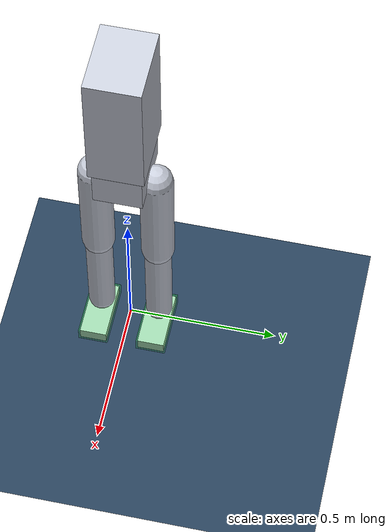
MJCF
<mujoco model="BR1 scene">
  <!-- Simulation scene = BR-1 robot + ground plane + lighting.
       Load THIS file for simulation/training/visualisation.
       (robot.xml on its own is also loadable, just with no floor.) -->

  <include file="robot.xml"/>

  <statistic center="0 0 0.6" extent="1.8"/>

  <visual>
    <headlight diffuse="0.6 0.6 0.6" ambient="0.35 0.35 0.35" specular="0 0 0"/>
    <rgba haze="0.15 0.25 0.35 1"/>
    <global azimuth="140" elevation="-20"/>
  </visual>

  <asset>
    <texture type="skybox" builtin="gradient" rgb1="0.30 0.50 0.70" rgb2="0 0 0"
             width="512" height="3072"/>
    <texture type="2d" name="groundplane" builtin="checker" mark="edge"
             rgb1="0.20 0.30 0.40" rgb2="0.10 0.20 0.30" markrgb="0.8 0.8 0.8"
             width="300" height="300"/>
    <material name="groundplane" texture="groundplane" texuniform="true"
              texrepeat="5 5" reflectance="0.15"/>
  </asset>

  <worldbody>
    <light pos="0 0 3.5" dir="0 0 -1" directional="true"/>
    <!-- Flat, infinite ground. friction = INITIAL ASSUMPTION (rubber sole on
         lab floor). Domain randomisation will sweep 0.5 - 1.2 from Milestone 7. -->
    <geom name="floor" type="plane" size="0 0 0.05" material="groundplane"
          condim="3" friction="1.0 0.005 0.0001"/>
  </worldbody>
</mujoco>

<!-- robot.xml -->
<mujoco model="BR1">
  <!--  BR-1  |  Biped Robot, Generation 1                               -->
  <!--  12 actuated DOF (6 per leg) + 6-DOF floating base                -->
  <!--  Units: SI. Internally MuJoCo uses radians; joint ranges here     -->
  <!--  are in DEGREES for readability (compiler angle="degree").        -->
  <!--  CONFIDENCE TAGS (see config/robot.yaml for the full list):       -->
  <!--    DERIVED            = computed from a stated model/ratio         -->
  <!--    INITIAL ASSUMPTION = placeholder, replace with CAD/bench data   -->
  <!--    CONVENTION         = a modelling choice, not a physical fact    -->

  <compiler angle="degree" autolimits="true"/>

  <!-- timestep 2 ms = 500 Hz physics. Policy will run at 50 Hz (decimation 10).
       implicitfast integrator: stable with joint damping + contacts.        -->
  <option timestep="0.002" integrator="implicitfast"/>

  <default>
    <default class="br1">
      <joint damping="1.0" armature="0.01" frictionloss="0.2"/>
      <geom condim="3" friction="1.0 0.005 0.0001"/>

      <default class="viz">
        <geom type="capsule" contype="0" conaffinity="0" group="2"
              rgba="0.78 0.80 0.85 1"/>
      </default>

      <!-- collision geometry: collides with the FLOOR only (conaffinity=0
           disables all robot self-collision for Milestones 1-6).              -->
      <default class="col">
        <geom group="3" rgba="0.90 0.50 0.20 0.35" contype="1" conaffinity="0"/>
      </default>
    </default>
  </default>

  <worldbody>
    <!-- ===================== FLOATING BASE ===================== -->
    <body name="pelvis" pos="0 0 0.86" childclass="br1">
      <freejoint name="root"/>
      <!-- pelvis box 0.22 x 0.16 x 0.12 m, uniform density -> diag inertia. INITIAL ASSUMPTION -->
      <inertial pos="0 0 0" mass="4.0" diaginertia="0.013 0.021 0.025"/>
      <geom class="viz" type="box" size="0.11 0.08 0.06"/>
      <!-- IMU strapdown location (base frame). gyro + accel + orientation. -->
      <site name="imu" pos="0 0 0" size="0.012" rgba="1 0 0 1"/>

      <!-- rigid upper body (no waist joint in Gen-1): trunk + head + arm mass -->
      <body name="torso" pos="0 0 0.30">
        <inertial pos="0 0 0" mass="14.6" diaginertia="0.286 0.316 0.110"/>
        <geom class="viz" type="box" size="0.12 0.09 0.225"/>
      </body>

      <!-- ========================= LEFT LEG ========================= -->
      <body name="L_hip_yaw_link" pos="0 0.10 -0.06">
        <joint name="L_hip_yaw" axis="0 0 1" range="-45 45"/>
        <inertial pos="0 0 0" mass="0.35" diaginertia="0.0004 0.0004 0.0004"/>
        <geom class="viz" type="sphere" size="0.045"/>

        <body name="L_hip_roll_link" pos="0 0 0">
          <joint name="L_hip_roll" axis="1 0 0" range="-25 35"/>
          <inertial pos="0 0 0" mass="0.35" diaginertia="0.0004 0.0004 0.0004"/>
          <geom class="viz" type="sphere" size="0.045"/>

          <body name="L_thigh" pos="0 0 0">
            <joint name="L_hip_pitch" axis="0 1 0" range="-135 30"/>
            <inertial pos="0 0 -0.19" mass="3.3" diaginertia="0.042 0.042 0.005"/>
            <geom class="viz" fromto="0 0 0 0 0 -0.38" size="0.055"/>
            <geom class="col" type="capsule" fromto="0 0 -0.06 0 0 -0.32" size="0.05"/>

            <body name="L_shank" pos="0 0 -0.38">
              <joint name="L_knee" axis="0 1 0" range="0 150"/>
              <inertial pos="0 0 -0.18" mass="1.8" diaginertia="0.020 0.020 0.0018"/>
              <geom class="viz" fromto="0 0 0 0 0 -0.36" size="0.045"/>
              <geom class="col" type="capsule" fromto="0 0 -0.05 0 0 -0.31" size="0.04"/>

              <body name="L_ankle_link" pos="0 0 -0.36">
                <joint name="L_ankle_pitch" axis="0 1 0" range="-45 30"/>
                <inertial pos="0 0 0" mass="0.30" diaginertia="0.0004 0.0004 0.0004"/>
                <geom class="viz" type="sphere" size="0.035"/>

                <body name="L_foot" pos="0 0 0">
                  <joint name="L_ankle_roll" axis="1 0 0" range="-20 20"/>
                  <!-- foot box 0.20(L) x 0.09(W) x 0.04(H); CoM 4 cm fwd, 4 cm below ankle -->
                  <inertial pos="0.04 0 -0.04" mass="0.60" diaginertia="0.00049 0.0021 0.0024"/>
                  <geom class="viz" type="box" pos="0.04 0 -0.04" size="0.10 0.045 0.02"/>
                  <geom name="L_sole" class="col" type="box" pos="0.04 0 -0.04"
                        size="0.10 0.045 0.02" friction="1.0 0.02 0.001" condim="3"/>
                  <!-- touch sensor volume (encloses the sole) -->
                  <site name="L_foot_site" type="box" pos="0.04 0 -0.04"
                        size="0.105 0.05 0.025" rgba="0 1 0 0.12"/>
                </body>
              </body>
            </body>
          </body>
        </body>
      </body>

      <!-- ========================= RIGHT LEG ========================= -->
      <body name="R_hip_yaw_link" pos="0 -0.10 -0.06">
        <joint name="R_hip_yaw" axis="0 0 1" range="-45 45"/>
        <inertial pos="0 0 0" mass="0.35" diaginertia="0.0004 0.0004 0.0004"/>
        <geom class="viz" type="sphere" size="0.045"/>

        <body name="R_hip_roll_link" pos="0 0 0">
          <joint name="R_hip_roll" axis="1 0 0" range="-25 35"/>
          <inertial pos="0 0 0" mass="0.35" diaginertia="0.0004 0.0004 0.0004"/>
          <geom class="viz" type="sphere" size="0.045"/>

          <body name="R_thigh" pos="0 0 0">
            <joint name="R_hip_pitch" axis="0 1 0" range="-135 30"/>
            <inertial pos="0 0 -0.19" mass="3.3" diaginertia="0.042 0.042 0.005"/>
            <geom class="viz" fromto="0 0 0 0 0 -0.38" size="0.055"/>
            <geom class="col" type="capsule" fromto="0 0 -0.06 0 0 -0.32" size="0.05"/>

            <body name="R_shank" pos="0 0 -0.38">
              <joint name="R_knee" axis="0 1 0" range="0 150"/>
              <inertial pos="0 0 -0.18" mass="1.8" diaginertia="0.020 0.020 0.0018"/>
              <geom class="viz" fromto="0 0 0 0 0 -0.36" size="0.045"/>
              <geom class="col" type="capsule" fromto="0 0 -0.05 0 0 -0.31" size="0.04"/>

              <body name="R_ankle_link" pos="0 0 -0.36">
                <joint name="R_ankle_pitch" axis="0 1 0" range="-45 30"/>
                <inertial pos="0 0 0" mass="0.30" diaginertia="0.0004 0.0004 0.0004"/>
                <geom class="viz" type="sphere" size="0.035"/>

                <body name="R_foot" pos="0 0 0">
                  <joint name="R_ankle_roll" axis="1 0 0" range="-20 20"/>
                  <inertial pos="0.04 0 -0.04" mass="0.60" diaginertia="0.00049 0.0021 0.0024"/>
                  <geom class="viz" type="box" pos="0.04 0 -0.04" size="0.10 0.045 0.02"/>
                  <geom name="R_sole" class="col" type="box" pos="0.04 0 -0.04"
                        size="0.10 0.045 0.02" friction="1.0 0.02 0.001" condim="3"/>
                  <site name="R_foot_site" type="box" pos="0.04 0 -0.04"
                        size="0.105 0.05 0.025" rgba="0 1 0 0.12"/>
                </body>
              </body>
            </body>
          </body>
        </body>
      </body>
    </body>
  </worldbody>

  <!-- ===================== ACTUATORS ===================== -->
  <actuator>
    <motor name="L_hip_yaw"     joint="L_hip_yaw"     ctrlrange="-40 40"   forcerange="-40 40"/>
    <motor name="L_hip_roll"    joint="L_hip_roll"    ctrlrange="-100 100" forcerange="-100 100"/>
    <motor name="L_hip_pitch"   joint="L_hip_pitch"   ctrlrange="-120 120" forcerange="-120 120"/>
    <motor name="L_knee"        joint="L_knee"        ctrlrange="-120 120" forcerange="-120 120"/>
    <motor name="L_ankle_pitch" joint="L_ankle_pitch" ctrlrange="-80 80"   forcerange="-80 80"/>
    <motor name="L_ankle_roll"  joint="L_ankle_roll"  ctrlrange="-40 40"   forcerange="-40 40"/>
    <motor name="R_hip_yaw"     joint="R_hip_yaw"     ctrlrange="-40 40"   forcerange="-40 40"/>
    <motor name="R_hip_roll"    joint="R_hip_roll"    ctrlrange="-100 100" forcerange="-100 100"/>
    <motor name="R_hip_pitch"   joint="R_hip_pitch"   ctrlrange="-120 120" forcerange="-120 120"/>
    <motor name="R_knee"        joint="R_knee"        ctrlrange="-120 120" forcerange="-120 120"/>
    <motor name="R_ankle_pitch" joint="R_ankle_pitch" ctrlrange="-80 80"   forcerange="-80 80"/>
    <motor name="R_ankle_roll"  joint="R_ankle_roll"  ctrlrange="-40 40"   forcerange="-40 40"/>
  </actuator>

  <!-- ===================== SENSORS ===================== -->
  <!-- Everything the SIM can measure. Which of these the RL *actor* is allowed
       to see is decided in env/observations.py (must be onboard-measurable). -->
  <sensor>
    <!-- joint encoders -->
    <jointpos name="L_hip_yaw_pos"     joint="L_hip_yaw"/>
    <jointpos name="L_hip_roll_pos"    joint="L_hip_roll"/>
    <jointpos name="L_hip_pitch_pos"   joint="L_hip_pitch"/>
    <jointpos name="L_knee_pos"        joint="L_knee"/>
    <jointpos name="L_ankle_pitch_pos" joint="L_ankle_pitch"/>
    <jointpos name="L_ankle_roll_pos"  joint="L_ankle_roll"/>
    <jointpos name="R_hip_yaw_pos"     joint="R_hip_yaw"/>
    <jointpos name="R_hip_roll_pos"    joint="R_hip_roll"/>
    <jointpos name="R_hip_pitch_pos"   joint="R_hip_pitch"/>
    <jointpos name="R_knee_pos"        joint="R_knee"/>
    <jointpos name="R_ankle_pitch_pos" joint="R_ankle_pitch"/>
    <jointpos name="R_ankle_roll_pos"  joint="R_ankle_roll"/>
    <!-- joint velocities (encoder difference on hardware) -->
    <jointvel name="L_hip_yaw_vel"     joint="L_hip_yaw"/>
    <jointvel name="L_hip_roll_vel"    joint="L_hip_roll"/>
    <jointvel name="L_hip_pitch_vel"   joint="L_hip_pitch"/>
    <jointvel name="L_knee_vel"        joint="L_knee"/>
    <jointvel name="L_ankle_pitch_vel" joint="L_ankle_pitch"/>
    <jointvel name="L_ankle_roll_vel"  joint="L_ankle_roll"/>
    <jointvel name="R_hip_yaw_vel"     joint="R_hip_yaw"/>
    <jointvel name="R_hip_roll_vel"    joint="R_hip_roll"/>
    <jointvel name="R_hip_pitch_vel"   joint="R_hip_pitch"/>
    <jointvel name="R_knee_vel"        joint="R_knee"/>
    <jointvel name="R_ankle_pitch_vel" joint="R_ankle_pitch"/>
    <jointvel name="R_ankle_roll_vel"  joint="R_ankle_roll"/>
    <!-- IMU (strapdown at 'imu' site) -->
    <gyro          name="imu_gyro"  site="imu"/>
    <accelerometer name="imu_acc"   site="imu"/>
    <framequat     name="imu_quat"  objtype="site" objname="imu"/>
    <!-- privileged / logging only (NOT onboard-measurable): -->
    <framelinvel   name="base_linvel" objtype="site" objname="imu"/>
    <framepos      name="base_pos"    objtype="site" objname="imu"/>
    <!-- foot contact (normal force sum). On HW: F/T sensor or contact estimator -->
    <touch name="L_touch" site="L_foot_site"/>
    <touch name="R_touch" site="R_foot_site"/>
  </sensor>

  <!-- ===================== KEYFRAMES ===================== -->
  <keyframe>
    <key name="stand"
         qpos="0 0 0.86  1 0 0 0
               0 0 -0.24435 0.48869 -0.24435 0
               0 0 -0.24435 0.48869 -0.24435 0"/>
  </keyframe>
</mujoco>
